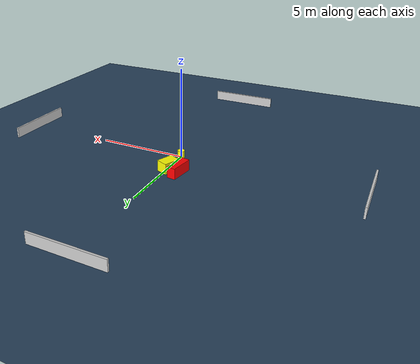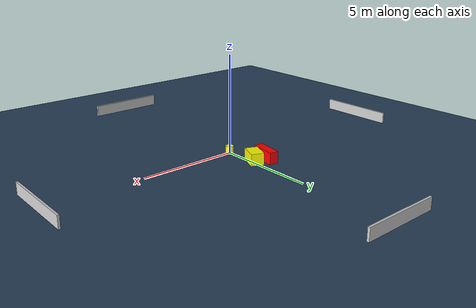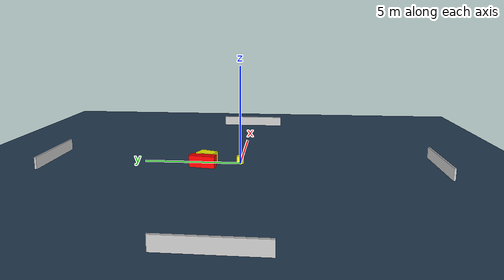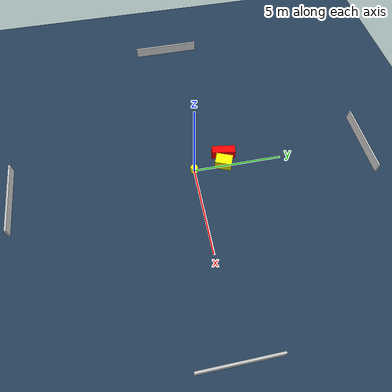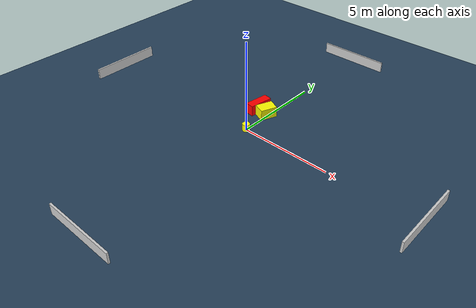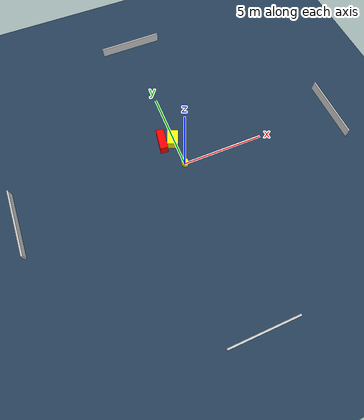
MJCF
<?xml version="1.0" ?>
<mujoco model="generated_environment">
  <option timestep="0.01" integrator="RK4" cone="elliptic"/>
  <default>
    <geom density="1"/>
  </default>
  <asset>
    <texture builtin="gradient" height="3072" name="skybox" rgb1="0.3 0.5 0.7" rgb2="0 0 0" type="skybox" width="512"/>
    <texture builtin="checker" height="300" name="groundplane" rgb1="0.2 0.3 0.4" rgb2="0.1 0.2 0.3" type="2d" width="300"/>
    <material name="groundplane" reflectance="0.2" texrepeat="5 5" texture="groundplane"/>
  </asset>
  <worldbody>
    <light dir="0 0 -1" directional="true" pos="0 0 1.5"/>
    <geom condim="3" friction="0.5 0.005 0.001" material="groundplane" name="floor" pos="0 0 0" size="0 0 0.05" type="plane"/>
    <body name="walls">
      <geom name="wall_1" condim="4" pos="-10.0 0.0 0.3" rgba="0.800000011920929 0.800000011920929 0.800000011920929 1.0" size="0.05 2.0 0.3" type="box"/>
      <geom name="wall_2" condim="4" pos="10.0 0.0 0.3" rgba="0.800000011920929 0.800000011920929 0.800000011920929 1.0" size="0.05 2.0 0.3" type="box"/>
      <geom name="wall_3" condim="4" pos="0.0 -10.0 0.3" rgba="0.800000011920929 0.800000011920929 0.800000011920929 1.0" size="2.0 0.05 0.3" type="box"/>
      <geom name="wall_4" condim="4" pos="0.0 10.0 0.3" rgba="0.800000011920929 0.800000011920929 0.800000011920929 1.0" size="2.0 0.05 0.3" type="box"/>
    </body>
    <body name="robot">
      <joint name="joint_x" type="slide" pos="0 0 0" axis="1 0 0"/>
      <joint name="joint_y" type="slide" pos="0 0 0" axis="0 1 0"/>
      <geom name="robot" type="cylinder" pos="0.0 0.0 0.2" size="0.2 0.2 0.0" mass="5.0" friction="1.0 0.005 0.0001" condim="4" rgba="1.0 1.0 0.0 1.0"/>
    </body>
    <body name="obstacle_1_movable">
      <geom name="obstacle_1_movable" condim="4" pos="-0.10332680883893994 1.7127792956106191 0.3" euler="0 0 338.2383146270184" friction="0.0 0.005 0.001" rgba="1.0 1.0 0.0 1.0" size="0.32531011728797976 0.4635318174308541 0.3" type="box" mass="0.1"/>
      <joint type="free"/>
    </body>
    <body name="obstacle_2_static">
      <geom name="obstacle_2_static" condim="4" pos="-0.7526826742976975 1.8398699292206417 0.3" euler="0 0 261.4618768205378" friction="0.0 0.005 0.001" rgba="1.0 0.0 0.0 1.0" size="0.6618036752541288 0.2358770633960302 0.3" type="box"/>
    </body>
  </worldbody>
  <actuator>
    <motor name="actuator_x" joint="joint_x" gear="1" ctrlrange="-1 1"/>
    <motor name="actuator_y" joint="joint_y" gear="1" ctrlrange="-1 1"/>
  </actuator>
</mujoco>
